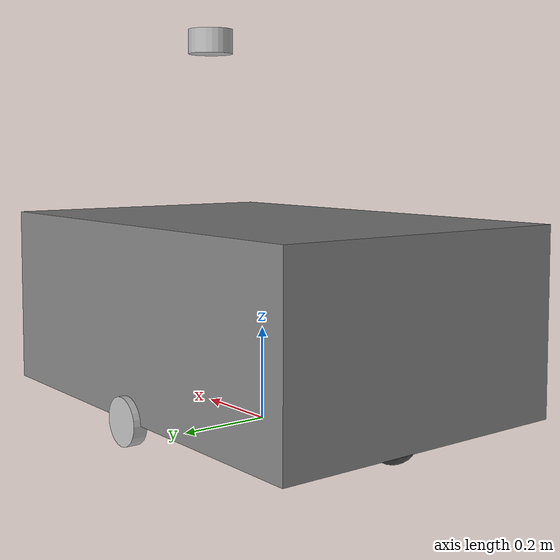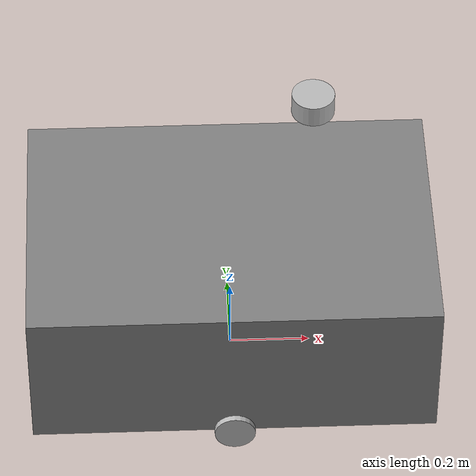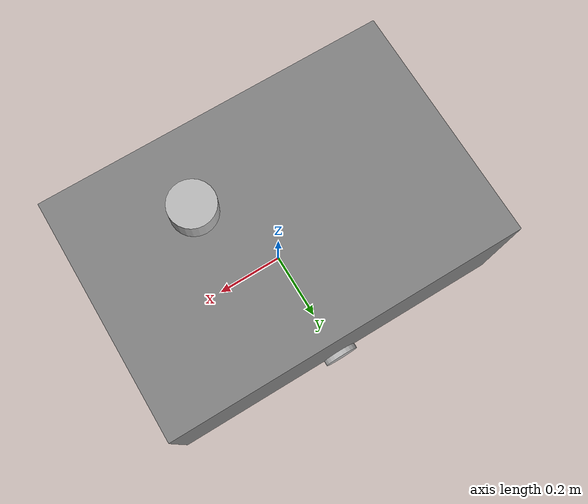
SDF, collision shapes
<?xml version="1.0" ?>
<sdf version="1.5">
  <model name="turtlebot3_husky">
    <pose>0.0 0.0 0.0 0.0 0.0 0.0</pose>

    <link name="base_footprint"/>

    <link name="base_link">

      <inertial>
        <pose>0.0 0 0.245 0 0 0</pose>
        <inertia>
          <ixx>5.5</ixx>
          <ixy>0.0</ixy>
          <ixz>0.0</ixz>
          <iyy>8.0</iyy>
          <iyz>0.0</iyz>
          <izz>3.5</izz>
        </inertia>
        <mass>15.0</mass>
      </inertial>

      <collision name="base_collision">
        <pose>0.0 0 0.245 0 0 0</pose>
        <geometry>
          <box>
            <size>0.990 0.670 0.390</size>
          </box>
        </geometry>
      </collision>

      <visual name="base_visual">
        <pose>0.0 0 0.245 0 0 0</pose>
        <geometry>
          <box>
            <size>0.990 0.670 0.390</size>
          </box>
        </geometry>
        <material>
          <ambient>0.2 0.2 0.2 1</ambient>
          <diffuse>0.5 0.5 0.5 1</diffuse>
          <specular>0.1 0.1 0.1 1</specular>
        </material>
      </visual>
    </link>

    <link name="imu_link">
      <sensor name="tb3_imu" type="imu">
        <always_on>true</always_on>
        <update_rate>200</update_rate>
        <imu>
          <angular_velocity>
            <x>
              <noise type="gaussian">
                <mean>0.0</mean>
                <stddev>2e-4</stddev>
              </noise>
            </x>
            <y>
              <noise type="gaussian">
                <mean>0.0</mean>
                <stddev>2e-4</stddev>
              </noise>
            </y>
            <z>
              <noise type="gaussian">
                <mean>0.0</mean>
                <stddev>2e-4</stddev>
              </noise>
            </z>
          </angular_velocity>
          <linear_acceleration>
            <x>
              <noise type="gaussian">
                <mean>0.0</mean>
                <stddev>1.7e-2</stddev>
              </noise>
            </x>
            <y>
              <noise type="gaussian">
                <mean>0.0</mean>
                <stddev>1.7e-2</stddev>
              </noise>
            </y>
            <z>
              <noise type="gaussian">
                <mean>0.0</mean>
                <stddev>1.7e-2</stddev>
              </noise>
            </z>
          </linear_acceleration>
        </imu>
        <plugin name="turtlebot3_imu" filename="libgazebo_ros_imu_sensor.so">
          <ros>
            <remapping>~/out:=imu</remapping>
          </ros>
        </plugin>
      </sensor>
    </link>

    <link name="base_scan">
      <inertial>
        <pose>0.195 0 0.830 0 0 0</pose>
        <inertia>
          <ixx>0.001</ixx>
          <ixy>0.000</ixy>
          <ixz>0.000</ixz>
          <iyy>0.001</iyy>
          <iyz>0.000</iyz>
          <izz>0.001</izz>
        </inertia>
        <mass>0.000001</mass>
      </inertial>

      <collision name="lidar_sensor_collision">
        <pose>0.195 0 0.830 0 0 0</pose>
        <geometry>
          <cylinder>
            <radius>0.0508</radius>
            <length>0.055</length>
          </cylinder>
        </geometry>
      </collision>

      <visual name="lidar_sensor_visual">
        <pose>0.195 0 0.830 0 0 0</pose>
        <geometry>
          <mesh>
            <uri>model://turtlebot3_common/meshes/lds.dae</uri>
            <scale>0.001 0.001 0.001</scale>
          </mesh>
        </geometry>
      </visual>

      <sensor name="hls_lfcd_lds" type="ray">
        <always_on>true</always_on>
        <visualize>true</visualize>
        <pose>0.195 0 0.830 0 0 0</pose>
        <update_rate>5</update_rate>
        <ray>
          <scan>
            <horizontal>
              <samples>360</samples>
              <resolution>1.000000</resolution>
              <min_angle>0.000000</min_angle>
              <max_angle>6.280000</max_angle>
            </horizontal>
          </scan>
          <range>
            <min>0.120000</min>
            <max>20.000000</max>
            <resolution>0.015000</resolution>
          </range>
          <noise>
            <type>gaussian</type>
            <mean>0.0</mean>
            <stddev>0.01</stddev>
          </noise>
        </ray>
        <plugin name="turtlebot3_laserscan" filename="libgazebo_ros_ray_sensor.so">
          <ros>
            <remapping>~/out:=scan</remapping>
          </ros>
          <output_type>sensor_msgs/LaserScan</output_type>
          <frame_name>base_scan</frame_name>
        </plugin>
      </sensor>
    </link>

    <link name='camera_link'>
      <self_collide>0</self_collide>
      <inertial>
        <pose>0 0 0 0 -0 0</pose>
        <inertia>
          <ixx>1</ixx>
          <ixy>0</ixy>
          <ixz>0</ixz>
          <iyy>1</iyy>
          <iyz>0</iyz>
          <izz>1</izz>
        </inertia>
        <mass>0.000001</mass>
      </inertial>
      <enable_wind>0</enable_wind>
      <kinematic>0</kinematic>
      <pose>0.195 0 0.755 0 -0 0</pose>
    </link>

    <link name='camera_rgb_frame_1'>
      <inertial>
        <pose>0.075 0 0 0 -0 0</pose>
        <inertia>
          <ixx>0.001</ixx>
          <ixy>0</ixy>
          <ixz>0</ixz>
          <iyy>0.001</iyy>
          <iyz>0</iyz>
          <izz>0.001</izz>
        </inertia>
        <mass>0.000001</mass>
      </inertial>
      <pose>0.270 0 0.755 0 -0 0</pose>
      <sensor name='camera_1' type='camera'>
        <always_on>1</always_on>
        <visualize>1</visualize>
        <update_rate>5</update_rate>
        <camera name='intel_realsense_r200'>
          <horizontal_fov>1.0472</horizontal_fov>
          <image>
            <width>1920</width>
            <height>1080</height>
            <format>R8G8B8</format>
          </image>
          <clip>
            <near>0.02</near>
            <far>300</far>
          </clip>
          <noise>
            <type>gaussian</type>
            <mean>0</mean>
            <stddev>0.007</stddev>
          </noise>
        </camera>
        <plugin name='camera_driver_1' filename='libgazebo_ros_camera.so'>
          <ros/>
        </plugin>
      </sensor>
      <self_collide>0</self_collide>
      <enable_wind>0</enable_wind>
      <kinematic>0</kinematic>
    </link>

    <link name='camera_rgb_frame_2'>
      <inertial>
        <pose>0.0375 0.065 0 0 -0 0</pose>
        <inertia>
          <ixx>0.001</ixx>
          <ixy>0</ixy>
          <ixz>0</ixz>
          <iyy>0.001</iyy>
          <iyz>0</iyz>
          <izz>0.001</izz>
        </inertia>
        <mass>0.000001</mass>
      </inertial>
      <pose>0.2325 0.065 0.755 0 -0 1.0472</pose>
      <sensor name='camera_2' type='camera'>
        <always_on>1</always_on>
        <visualize>0</visualize>
        <update_rate>5</update_rate>
        <camera name='intel_realsense_r200'>
          <horizontal_fov>1.0472</horizontal_fov>
          <image>
            <width>1920</width>
            <height>1080</height>
            <format>R8G8B8</format>
          </image>
          <clip>
            <near>0.02</near>
            <far>300</far>
          </clip>
          <noise>
            <type>gaussian</type>
            <mean>0</mean>
            <stddev>0.007</stddev>
          </noise>
        </camera>
        <plugin name='camera_driver_2' filename='libgazebo_ros_camera.so'>
          <ros/>
        </plugin>
      </sensor>
      <self_collide>0</self_collide>
      <enable_wind>0</enable_wind>
      <kinematic>0</kinematic>
    </link>

    <link name='camera_rgb_frame_3'>
      <inertial>
        <pose>-0.0375 0.065 0 0 -0 0</pose>
        <inertia>
          <ixx>0.001</ixx>
          <ixy>0</ixy>
          <ixz>0</ixz>
          <iyy>0.001</iyy>
          <iyz>0</iyz>
          <izz>0.001</izz>
        </inertia>
        <mass>0.000001</mass>
      </inertial>
      <pose>0.1575 0.065 0.755 0 -0 2.0944</pose>
      <sensor name='camera_3' type='camera'>
        <always_on>1</always_on>
        <visualize>0</visualize>
        <update_rate>5</update_rate>
        <camera name='intel_realsense_r200'>
          <horizontal_fov>1.0472</horizontal_fov>
          <image>
            <width>1920</width>
            <height>1080</height>
            <format>R8G8B8</format>
          </image>
          <clip>
            <near>0.02</near>
            <far>300</far>
          </clip>
          <noise>
            <type>gaussian</type>
            <mean>0</mean>
            <stddev>0.007</stddev>
          </noise>
        </camera>
        <plugin name='camera_driver_3' filename='libgazebo_ros_camera.so'>
          <ros/>
        </plugin>
      </sensor>
      <self_collide>0</self_collide>
      <enable_wind>0</enable_wind>
      <kinematic>0</kinematic>
      <gravity>1</gravity>
    </link>

    <link name='camera_rgb_frame_4'>
      <inertial>
        <pose>-0.075 0 0 0 -0 0</pose>
        <inertia>
          <ixx>0.001</ixx>
          <ixy>0</ixy>
          <ixz>0</ixz>
          <iyy>0.001</iyy>
          <iyz>0</iyz>
          <izz>0.001</izz>
        </inertia>
        <mass>0.000001</mass>
      </inertial>
      <pose>0.120 0 0.755 0 -0 3.1416</pose>
      <sensor name='camera_4' type='camera'>
        <always_on>1</always_on>
        <visualize>0</visualize>
        <update_rate>5</update_rate>
        <camera name='intel_realsense_r200'>
          <horizontal_fov>1.0472</horizontal_fov>
          <image>
            <width>1920</width>
            <height>1080</height>
            <format>R8G8B8</format>
          </image>
          <clip>
            <near>0.02</near>
            <far>300</far>
          </clip>
          <noise>
            <type>gaussian</type>
            <mean>0</mean>
            <stddev>0.007</stddev>
          </noise>
        </camera>
        <plugin name='camera_driver_4' filename='libgazebo_ros_camera.so'>
          <ros/>
        </plugin>
      </sensor>
      <self_collide>0</self_collide>
      <enable_wind>0</enable_wind>
      <kinematic>0</kinematic>
    </link>

    <link name='camera_rgb_frame_5'>
      <inertial>
        <pose>-0.0375 -0.065 0 0 -0 0</pose>
        <inertia>
          <ixx>0.001</ixx>
          <ixy>0</ixy>
          <ixz>0</ixz>
          <iyy>0.001</iyy>
          <iyz>0</iyz>
          <izz>0.001</izz>
        </inertia>
        <mass>0.000001</mass>
      </inertial>
      <pose>0.1575 -0.065 0.755 -0 -0 -2.0944</pose>
      <sensor name='camera_5' type='camera'>
        <always_on>1</always_on>
        <visualize>0</visualize>
        <update_rate>5</update_rate>
        <camera name='intel_realsense_r200'>
          <horizontal_fov>1.0472</horizontal_fov>
          <image>
            <width>1920</width>
            <height>1080</height>
            <format>R8G8B8</format>
          </image>
          <clip>
            <near>0.02</near>
            <far>300</far>
          </clip>
          <noise>
            <type>gaussian</type>
            <mean>0</mean>
            <stddev>0.007</stddev>
          </noise>
        </camera>
        <plugin name='camera_driver_5' filename='libgazebo_ros_camera.so'>
          <ros/>
        </plugin>
      </sensor>
      <self_collide>0</self_collide>
      <enable_wind>0</enable_wind>
      <kinematic>0</kinematic>
    </link>

    <link name='camera_rgb_frame_6'>
      <inertial>
        <pose>0.0375 -0.065 0 0 -0 0</pose>
        <inertia>
          <ixx>0.001</ixx>
          <ixy>0</ixy>
          <ixz>0</ixz>
          <iyy>0.001</iyy>
          <iyz>0</iyz>
          <izz>0.001</izz>
        </inertia>
        <mass>0.000001</mass>
      </inertial>
      <pose>0.2325 -0.065 0.755 0 0 -1.0472</pose>
      <sensor name='camera_6' type='camera'>
        <always_on>1</always_on>
        <visualize>0</visualize>
        <update_rate>5</update_rate>
        <camera name='intel_realsense_r200'>
          <horizontal_fov>1.0472</horizontal_fov>
          <image>
            <width>1920</width>
            <height>1080</height>
            <format>R8G8B8</format>
          </image>
          <clip>
            <near>0.02</near>
            <far>300</far>
          </clip>
          <noise>
            <type>gaussian</type>
            <mean>0</mean>
            <stddev>0.007</stddev>
          </noise>
        </camera>
        <plugin name='camera_driver_6' filename='libgazebo_ros_camera.so'>
          <ros/>
        </plugin>
      </sensor>
      <self_collide>0</self_collide>
      <enable_wind>0</enable_wind>
      <kinematic>0</kinematic>
    </link>

    <link name="wheel_left_link">

      <inertial>
        <pose>0 0.335 0.050 -1.57 0 0</pose>
        <inertia>
          <ixx>1.8158194e-02</ixx>
          <ixy>-9.3392e-11</ixy>
          <ixz>1.04909e-10</ixz>
          <iyy>3.2922126e-02</iyy>
          <iyz>5.75694e-10</iyz>
          <izz>1.8158194e-02</izz>
        </inertia>
        <mass>2.8498940e-01</mass>
      </inertial>

      <collision name="wheel_left_collision">
        <pose>0 0.335 0.050 -1.57 0 0</pose>
        <geometry>
          <cylinder>
            <radius>0.050</radius>
            <length>0.030</length>
          </cylinder>
        </geometry>
        <surface>
          <!-- This friction pamareter don't contain reliable data!! -->
          <friction>
            <ode>
              <mu>100000.0</mu>
              <mu2>100000.0</mu2>
              <fdir1>0 0 0</fdir1>
              <slip1>0.0</slip1>
              <slip2>0.0</slip2>
            </ode>
          </friction>
          <contact>
            <ode>
              <soft_cfm>0</soft_cfm>
              <soft_erp>0.2</soft_erp>
              <kp>1e+5</kp>
              <kd>1</kd>
              <max_vel>0.01</max_vel>
              <min_depth>0.001</min_depth>
            </ode>
          </contact>
        </surface>
      </collision>

      <visual name="wheel_left_visual">
        <pose>0 0.335 0.050 0 0 0</pose>
        <geometry>
          <mesh>
            <uri>model://turtlebot3_common/meshes/tire.dae</uri>
            <scale>0.001 0.001 0.001</scale>
          </mesh>
        </geometry>
      </visual>
    </link>

    <link name="wheel_right_link">

      <inertial>
        <pose>0.0 -0.335 0.050 -1.57 0 0</pose>
        <inertia>
          <ixx>1.8158194e-02</ixx>
          <ixy>-9.3392e-11</ixy>
          <ixz>1.04909e-10</ixz>
          <iyy>3.2922126e-02</iyy>
          <iyz>5.75694e-10</iyz>
          <izz>1.8158194e-02</izz>
        </inertia>
        <mass>2.8498940e-01</mass>
      </inertial>

      <collision name="wheel_right_collision">
        <pose>0.0 -0.335 0.050 -1.57 0 0</pose>
        <geometry>
          <cylinder>
            <radius>0.050</radius>
            <length>0.030</length>
          </cylinder>
        </geometry>
        <surface>
          <!-- This friction pamareter don't contain reliable data!! -->
          <friction>
            <ode>
              <mu>100000.0</mu>
              <mu2>100000.0</mu2>
              <fdir1>0 0 0</fdir1>
              <slip1>0.0</slip1>
              <slip2>0.0</slip2>
            </ode>
          </friction>
          <contact>
            <ode>
              <soft_cfm>0</soft_cfm>
              <soft_erp>0.2</soft_erp>
              <kp>1e+5</kp>
              <kd>1</kd>
              <max_vel>0.01</max_vel>
              <min_depth>0.001</min_depth>
            </ode>
          </contact>
        </surface>
      </collision>

      <visual name="wheel_right_visual">
        <pose>0.0 -0.335 0.050 0 0 0</pose>
        <geometry>
          <mesh>
            <uri>model://turtlebot3_common/meshes/tire.dae</uri>
            <scale>0.001 0.001 0.001</scale>
          </mesh>
        </geometry>
      </visual>
    </link>

    <link name='caster_back_link'>
      <pose>-0.400 0 0.050 -1.57 0 0</pose>
      <inertial>
        <mass>0.010</mass>
        <inertia>
          <ixx>0.001</ixx>
          <ixy>0.000</ixy>
          <ixz>0.000</ixz>
          <iyy>0.001</iyy>
          <iyz>0.000</iyz>
          <izz>0.001</izz>
        </inertia>
      </inertial>
      <collision name='collision'>
        <geometry>
          <sphere>
            <radius>0.050000</radius>
          </sphere>
        </geometry>
        <surface>
          <contact>
            <ode>
              <soft_cfm>0</soft_cfm>
              <soft_erp>0.2</soft_erp>
              <kp>1e+5</kp>
              <kd>1</kd>
              <max_vel>0.01</max_vel>
              <min_depth>0.001</min_depth>
            </ode>
          </contact>
          <friction>
            <ode>
              <mu>0.1</mu>
              <mu2>0.1</mu2>
              <fdir1>0 0 0</fdir1>
              <slip1>1.0</slip1>
              <slip2>1.0</slip2>
            </ode>
          </friction>
        </surface>
      </collision>
      <visual name='caster_back_visual'>
        <geometry>
          <sphere>
            <radius>0.050000</radius>
          </sphere>
        </geometry>
        <material>
          <ambient>0.1 0.1 0.1 1</ambient>
          <diffuse>0.3 0.3 0.3 1</diffuse>
          <specular>0.1 0.1 0.1 1</specular>
        </material>
      </visual>
    </link>

    <link name='caster_front_link'>
      <pose>0.400 0 0.050 -1.57 0 0</pose>
      <inertial>
        <mass>0.010</mass>
        <inertia>
          <ixx>0.001</ixx>
          <ixy>0.000</ixy>
          <ixz>0.000</ixz>
          <iyy>0.001</iyy>
          <iyz>0.000</iyz>
          <izz>0.001</izz>
        </inertia>
      </inertial>
      <collision name='collision'>
        <geometry>
          <sphere>
            <radius>0.050000</radius>
          </sphere>
        </geometry>
        <surface>
          <contact>
            <ode>
              <soft_cfm>0</soft_cfm>
              <soft_erp>0.2</soft_erp>
              <kp>1e+5</kp>
              <kd>1</kd>
              <max_vel>0.01</max_vel>
              <min_depth>0.001</min_depth>
            </ode>
          </contact>
          <friction>
            <ode>
              <mu>0.1</mu>
              <mu2>0.1</mu2>
              <fdir1>0 0 0</fdir1>
              <slip1>1.0</slip1>
              <slip2>1.0</slip2>
            </ode>
          </friction>
        </surface>
      </collision>
      <visual name='caster_front_visual'>
        <geometry>
          <sphere>
            <radius>0.050000</radius>
          </sphere>
        </geometry>
        <material>
          <ambient>0.1 0.1 0.1 1</ambient>
          <diffuse>0.3 0.3 0.3 1</diffuse>
          <specular>0.1 0.1 0.1 1</specular>
        </material>
      </visual>
    </link>

    <joint name="base_joint" type="fixed">
      <parent>base_footprint</parent>
      <child>base_link</child>
      <pose>0.0 0.0 0.050 0 0 0</pose>
    </joint>

    <joint name="wheel_left_joint" type="revolute">
      <parent>base_link</parent>
      <child>wheel_left_link</child>
      <pose>0.0 0.335 0.050 -1.57 0 0</pose>
      <axis>
        <xyz>0 0 1</xyz>
      </axis>
    </joint>

    <joint name="wheel_right_joint" type="revolute">
      <parent>base_link</parent>
      <child>wheel_right_link</child>
      <pose>0.0 -0.335 0.050 -1.57 0 0</pose>
      <axis>
        <xyz>0 0 1</xyz>
      </axis>
    </joint>

    <joint name='caster_back_joint' type='ball'>
      <parent>base_link</parent>
      <child>caster_back_link</child>
    </joint>

    <joint name='caster_front_joint' type='ball'>
      <parent>base_link</parent>
      <child>caster_front_link</child>
    </joint>

    <joint name="imu_joint" type="fixed">
      <parent>base_link</parent>
      <child>imu_link</child>
      <pose>0.0 0 0.245 0 0 0</pose>
      <axis>
        <xyz>0 0 1</xyz>
      </axis>
    </joint>

    <joint name="lidar_joint" type="fixed">
      <parent>base_link</parent>
      <child>base_scan</child>
      <pose>0.195 0 0.830 0 0 0</pose>
      <axis>
        <xyz>0 0 1</xyz>
      </axis>
    </joint>

    <joint name='camera_joint' type='fixed'>
      <parent>base_link</parent>
      <child>camera_link</child>
      <pose>0.195 0 0.755 0 -0 0</pose>
      <physics>
        <ode>
          <limit>
            <cfm>0</cfm>
            <erp>0.2</erp>
          </limit>
          <suspension>
            <cfm>0</cfm>
            <erp>0.2</erp>
          </suspension>
        </ode>
      </physics>
    </joint>

    <joint name='camera_rgb_joint_1' type='fixed'>
      <parent>camera_link</parent>
      <child>camera_rgb_frame_1</child>
      <pose>0.075 0 0 0 -0 0</pose>
      <physics>
        <ode>
          <limit>
            <cfm>0</cfm>
            <erp>0.2</erp>
          </limit>
          <suspension>
            <cfm>0</cfm>
            <erp>0.2</erp>
          </suspension>
        </ode>
      </physics>
    </joint>

    <joint name='camera_rgb_joint_2' type='fixed'>
      <parent>camera_link</parent>
      <child>camera_rgb_frame_2</child>
      <pose>0.0375 0.065 0 0 -0 1.0472</pose>
      <physics>
        <ode>
          <limit>
            <cfm>0</cfm>
            <erp>0.2</erp>
          </limit>
          <suspension>
            <cfm>0</cfm>
            <erp>0.2</erp>
          </suspension>
        </ode>
      </physics>
    </joint>

    <joint name='camera_rgb_joint_3' type='fixed'>
      <parent>camera_link</parent>
      <child>camera_rgb_frame_3</child>
      <pose>-0.0375 0.065 0 0 -0 2.0944</pose>
      <physics>
        <ode>
          <limit>
            <cfm>0</cfm>
            <erp>0.2</erp>
          </limit>
          <suspension>
            <cfm>0</cfm>
            <erp>0.2</erp>
          </suspension>
        </ode>
      </physics>
    </joint>

    <joint name='camera_rgb_joint_4' type='fixed'>
      <parent>camera_link</parent>
      <child>camera_rgb_frame_4</child>
      <pose>-0.075 0 0 0 -0 3.1416</pose>
      <physics>
        <ode>
          <limit>
            <cfm>0</cfm>
            <erp>0.2</erp>
          </limit>
          <suspension>
            <cfm>0</cfm>
            <erp>0.2</erp>
          </suspension>
        </ode>
      </physics>
    </joint>

    <joint name='camera_rgb_joint_5' type='fixed'>
      <parent>camera_link</parent>
      <child>camera_rgb_frame_5</child>
      <pose>-0.0375 -0.065 0 0 -0 -2.0944</pose>
      <physics>
        <ode>
          <limit>
            <cfm>0</cfm>
            <erp>0.2</erp>
          </limit>
          <suspension>
            <cfm>0</cfm>
            <erp>0.2</erp>
          </suspension>
        </ode>
      </physics>
    </joint>

    <joint name='camera_rgb_joint_6' type='fixed'>
      <parent>camera_link</parent>
      <child>camera_rgb_frame_6</child>
      <pose>0.0375 -0.065 0 0 -0 -1.0472</pose>
      <physics>
        <ode>
          <limit>
            <cfm>0</cfm>
            <erp>0.2</erp>
          </limit>
          <suspension>
            <cfm>0</cfm>
            <erp>0.2</erp>
          </suspension>
        </ode>
      </physics>
    </joint>

    <plugin name="turtlebot3_diff_drive" filename="libgazebo_ros_diff_drive.so">

      <ros>
      </ros>

      <update_rate>30</update_rate>

      <!-- wheels -->
      <left_joint>wheel_left_joint</left_joint>
      <right_joint>wheel_right_joint</right_joint>

      <!-- kinematics -->
      <wheel_separation>0.670</wheel_separation>
      <wheel_diameter>0.100</wheel_diameter>

      <!-- limits -->
      <max_wheel_torque>50</max_wheel_torque>
      <max_wheel_acceleration>2.0</max_wheel_acceleration>

      <command_topic>cmd_vel</command_topic>

      <!-- output -->
      <publish_odom>true</publish_odom>
      <publish_odom_tf>true</publish_odom_tf>
      <publish_wheel_tf>false</publish_wheel_tf>

      <odometry_topic>odom</odometry_topic>
      <odometry_frame>odom</odometry_frame>
      <robot_base_frame>base_footprint</robot_base_frame>

    </plugin>

    <plugin name="turtlebot3_joint_state" filename="libgazebo_ros_joint_state_publisher.so">
      <ros>
        <remapping>~/out:=joint_states</remapping>
      </ros>
      <update_rate>30</update_rate>
      <joint_name>wheel_left_joint</joint_name>
      <joint_name>wheel_right_joint</joint_name>
    </plugin>
  </model>
</sdf>
